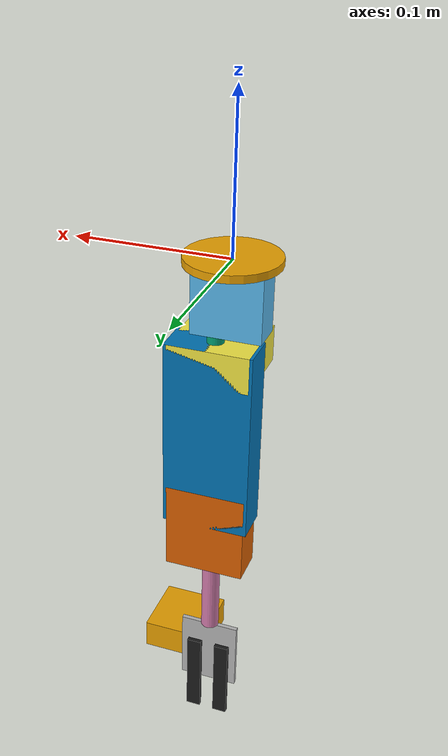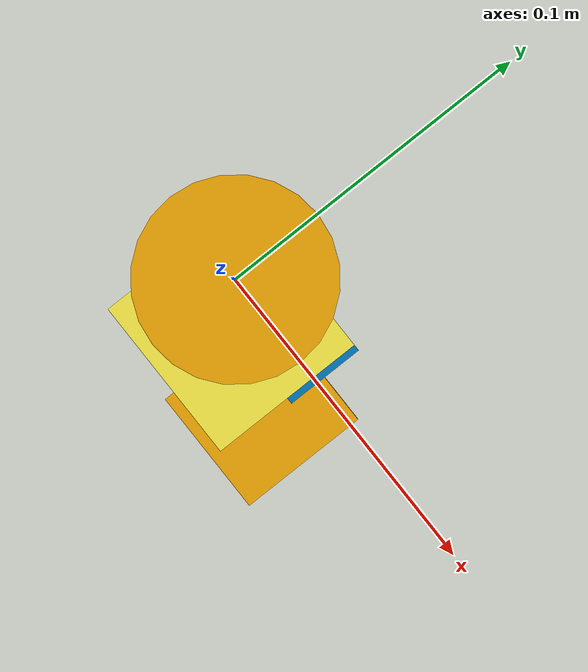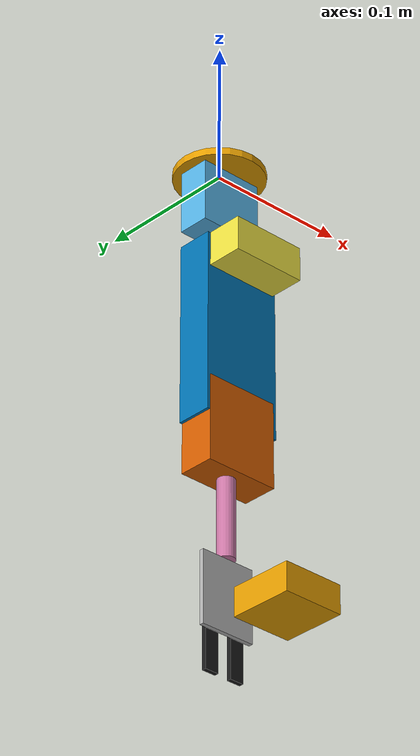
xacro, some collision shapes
<?xml version="1.0"?>
<robot xmlns:xacro="http://www.ros.org/wiki/xacro" name="manipulator">

    <xacro:include filename="$(find manipulator_description)/urdf/manipulator_gazebo.xacro"/>
    <xacro:include filename="$(find manipulator_description)/urdf/manipulator_ros2_control.xacro"/>

    <!-- Links -->
    <!-- NOTE: world link and base_plate_fixed joint removed for aerial manipulator integration -->
    <!-- The base_plate will be connected to hexacopter::base_link via the world file -->

    <link name="base_plate">
        <inertial>
            <origin xyz="0 0 0" rpy="0 0 0"/>
            <mass value="0.050"/>  <!-- Example: 50g plate -->
            <inertia
                ixx="0.00001129"
                ixy="0.0"
                ixz="0.0"
                iyy="0.00001129"
                iyz="0.0"
                izz="0.00002250"/>
        </inertial>

        <visual>
            <origin xyz="0 0 0" rpy="0 0 0"/>
            <geometry>
                <cylinder radius="0.03" length="0.005"/>
            </geometry>
        </visual>

        <collision>
            <origin xyz="0 0 0" rpy="0 0 0"/>
            <geometry>
                <cylinder radius="0.03" length="0.005"/>
            </geometry>
        </collision>
    </link>

    <link name="arm_motor_1">
        <inertial>
            <origin xyz="0 0 0" rpy="0 0 0"/>
            <mass value="0.075"/>

            <inertia
                ixx="1.512500e-05" ixy="0" ixz="0"
                iyy="2.475625e-05" iyz="0"
                izz="1.568125e-05"/>
        </inertial>

        <visual>
            <origin xyz="0 0 0" rpy="0 0 0"/>
            <geometry>
                <!-- Motor approximated as 45×22×44 mm box -->
                <box size="0.045 0.022 0.044"/>
            </geometry>
        </visual>

        <collision>
            <origin xyz="0 0 0" rpy="0 0 0"/>
            <geometry>
                <box size="0.045 0.022 0.044"/>
            </geometry>
        </collision>
    </link>

    <joint name="joint_motor_1" type="fixed">
        <parent link="base_plate"/>
        <child link="arm_motor_1"/>

        <!-- Motor attached below the plate -->
        <origin xyz="0 0 -0.0245" rpy="0 0 0"/>
    </joint>

    <link name="razor_connector">
        <inertial>
            <origin xyz="0 0 0" rpy="0 0 0"/>
            <mass value="0.01"/>

            <inertia
                ixx="1.28958333e-07" ixy="0" ixz="0"
                iyy="1.28958333e-07" iyz="0"
                izz="1.51250000e-07"/>
        </inertial>

        <visual>
            <origin xyz="0 0 0" rpy="0 0 0"/>
            <geometry>
                <cylinder radius="0.0055" length="0.008"/>
            </geometry>
        </visual>

        <collision>
            <origin xyz="0 0 0" rpy="0 0 0"/>
            <geometry>
                <cylinder radius="0.0055" length="0.008"/>
            </geometry>
        </collision>
    </link>

    <joint name="joint_motor1_to_connector" type="fixed">
        <parent link="arm_motor_1"/>
        <child link="razor_connector"/>

        <!-- Connector sits ABOVE motor_1 -->
        <origin xyz="0.0095 0 -0.026" rpy="0 0 0"/>
    </joint>

    <link name="arm_motor_2">
        <inertial>
            <origin xyz="0 0 0" rpy="0 0 0"/>
            <mass value="0.082"/>

            <inertia
                ixx="2.10193333e-05" ixy="0" ixz="0"
                iyy="2.31308333e-05" iyz="0"
                izz="3.62781667e-05"/>
        </inertial>

        <visual>
            <origin xyz="0 0 0" rpy="0 0 0"/>
            <geometry>
                <!-- Motor approximated as 53×24×50 mm box -->
                <box size="0.053 0.050 0.024"/>
            </geometry>
        </visual>

        <collision>
            <origin xyz="0 0 0" rpy="0 0 0"/>
            <geometry>
                <box size="0.053 0.050 0.024"/>
            </geometry>
        </collision>
    </link>

    <joint name="joint_1" type="revolute">
        <parent link="razor_connector"/>
        <child link="arm_motor_2"/>

        <!-- Motor 2 sits ABOVE the connector -->
        <origin xyz="0 -0.010 -0.016" rpy="0 0 0"/>

        <!-- Rotation around Z-axis -->
        <axis xyz="0 0 1"/>

        <!-- Reasonable limits (modify as needed) -->
        <limit lower="-3.14" upper="3.14" effort="2.0" velocity="5.0"/>

        <!-- DART physics dynamics -->
        <dynamics damping="0.1" friction="0.1"/>
    </joint>

    <gazebo reference="joint_1">
        <initial_position>0.0</initial_position>
    </gazebo>

    <link name="h_arm">
        <inertial>
            <origin xyz="0 0 -0.052" rpy="0 0 0"/>
            <mass value="0.054"/>

            <inertia
                ixx="1.980045e-04" ixy="0" ixz="0"
                iyy="2.266425e-04" iyz="0"
                izz="3.426300e-05"/>
        </inertial>

        <visual>
            <origin xyz="0 0 -0.052" rpy="0 0 0"/>
            <geometry>
                <!-- 2 mm × 25 mm cross-section, height 128 mm -->
                <box size="0.057 0.025 0.128"/>
            </geometry>
        </visual>

        <collision>
            <origin xyz="0 0 -0.052" rpy="0 0 0"/>
            <geometry>
                <box size="0.057 0.025 0.128"/>
            </geometry>
        </collision>
    </link>

    <joint name="joint_2" type="revolute">
        <parent link="arm_motor_2"/>
        <child link="h_arm"/>

        <!-- Arm sits Below motor_2 -->
        <origin xyz="0 0.0125 0" rpy="0 0 0"/>

        <!-- Rotation around X-axis -->
        <axis xyz="1 0 0"/>

        <limit lower="-1.57" upper="1.57" effort="2.0" velocity="3.0"/>

        <!-- DART physics dynamics -->
        <dynamics damping="0.1" friction="0.1"/>
    </joint>

    <gazebo reference="joint_2">
        <initial_position>0.0</initial_position>
    </gazebo>

    <link name="arm_motor_3">
        <inertial>
            <origin xyz="0 0 -0.015" rpy="0 0 0"/>
            <mass value="0.085"/>

            <inertia
                ixx="4.90520833e-05" ixy="0" ixz="0"
                iyy="6.45220833e-05" iyz="0"
                izz="2.43241667e-05"/>
        </inertial>

        <visual>
            <origin xyz="0 0 -0.015" rpy="0 0 0"/>
            <geometry>
                <!-- 53 × 25 × 60 mm -->
                <box size="0.053 0.025 0.060"/>
            </geometry>
        </visual>

        <collision>
            <origin xyz="0 0 -0.015" rpy="0 0 0"/>
            <geometry>
                <box size="0.053 0.025 0.060"/>
            </geometry>
        </collision>
    </link>

    <joint name="joint_3" type="revolute">
        <parent link="h_arm"/>
        <child link="arm_motor_3"/>

        <origin xyz="0 0 -0.106" rpy="0 0 0"/>
        <!-- Rotation around X-axis -->
        <axis xyz="1 0 0"/>
        <limit lower="-1.57" upper="1.57" effort="2.0" velocity="3.0"/>

        <!-- DART physics dynamics -->
        <dynamics damping="0.1" friction="0.1"/>
    </joint>

    <gazebo reference="joint_3">
        <initial_position>0.0</initial_position>
    </gazebo>

    <link name="rod">
        <inertial>
            <origin xyz="0 0 0" rpy="0 0 0"/>
            <mass value="0.02"/>

            <inertia
                ixx="5.22166667e-06" ixy="0" ixz="0"
                iyy="5.22166667e-06" iyz="0"
                izz="3.60000000e-07"/>
        </inertial>

        <visual>
            <origin xyz="0 0 0" rpy="0 0 0"/>
            <geometry>
                <!-- r = 6 mm, h = 55 mm -->
                <cylinder radius="0.006" length="0.055"/>
            </geometry>
        </visual>

        <collision>
            <origin xyz="0 0 0" rpy="0 0 0"/>
            <geometry>
                <cylinder radius="0.006" length="0.055"/>
            </geometry>
        </collision>
    </link>

    <!-- Rod fixedly connected to Motor 3 -->
    <joint name="joint_motor3_to_rod" type="fixed">
        <parent link="arm_motor_3"/>
        <child  link="rod"/>

        <!-- Rod center 0.0575 m above motor_3 center:
            0.5*0.060 (motor height) + 0.5*0.055 (rod length) -->
        <origin xyz="-0.0015 0 -0.0725" rpy="0 0 0"/>
    </joint>

    <link name="gripper_base">
        <inertial>
            <origin xyz="0 0 0" rpy="0 0 0"/>
            <mass value="0.020"/>

            <inertia
                ixx="4.18166667e-06" ixy="0" ixz="0"
                iyy="6.83333333e-06" iyz="0"
                izz="2.68166667e-06"/>
        </inertial>

        <visual>
            <origin xyz="0 0 0" rpy="0 0 0"/>
            <geometry>
                <!-- 40 × 3 × 50 mm plate -->
                <box size="0.040 0.003 0.050"/>
            </geometry>
        </visual>

        <collision>
            <origin xyz="0 0 0" rpy="0 0 0"/>
            <geometry>
                <box size="0.040 0.003 0.050"/>
            </geometry>
        </collision>
    </link>

    <joint name="joint_rod_to_gripper_base" type="fixed">
        <parent link="rod"/>
        <child  link="gripper_base"/>

        <!-- Gripper base mounted at the top end of the rod -->
        <origin xyz="0 0 -0.0525" rpy="0 0 0"/>
    </joint>

    <link name="arm_motor_4">
        <inertial>
            <origin xyz="0 0 0" rpy="0 0 0"/>
            <mass value="0.055"/>

            <inertia
                ixx="1.11145833e-05" ixy="0" ixz="0"
                iyy="1.07066667e-05" iyz="0"
                izz="1.81545833e-05"/>
        </inertial>

        <visual>
            <origin xyz="0 0 0" rpy="0 0 0"/>
            <geometry>
                <!-- 44 × 20 × 45 mm block -->
                <box size="0.044 0.045 0.020"/>
            </geometry>
        </visual>

        <collision>
            <origin xyz="0 0 0" rpy="0 0 0"/>
            <geometry>
                <box size="0.044 0.045 0.020"/>
            </geometry>
        </collision>
    </link>

    <joint name="joint_gripperbase_to_motor4" type="fixed">
        <parent link="gripper_base"/>
        <child  link="arm_motor_4"/>

        <!-- Motor 4 mounted on top of the gripper base -->
        <origin xyz="0.027 -0.024 -0.002" rpy="0 0 0"/>
    </joint>

    <link name="gripper_L">
        <inertial>
            <origin xyz="0 0 -0.022" rpy="0 0 0"/>
            <mass value="0.020"/>

            <inertia
                ixx="1.56950000e-05" ixy="0" ixz="0"
                iyy="1.58466667e-05" iyz="0"
                izz="1.81666667e-07"/>
        </inertial>

        <visual>
            <origin xyz="-0.009 -0.002 -0.075" rpy="-${PI / 2} -${PI / 2} 0"/>
            <geometry>
                <mesh filename="package://manipulator_description/meshes/left_finger.STL" scale="0.0015 0.0015 0.0015"/>
            </geometry>
            <material name="black">
                <color rgba="0.1 0.1 0.1 1.0"/>
            </material>
        </visual>

        <collision>
            <origin xyz="0 0 -0.022" rpy="0 0 0"/>
            <geometry>
                <box size="0.010 0.003 0.060"/>
            </geometry>
        </collision>
    </link>

    <joint name="joint_4" type="revolute">
        <parent link="gripper_base"/>
        <child  link="gripper_L"/>

        <!-- Gripper hinge location (adjust if needed) -->
        <origin xyz="-0.010 0.003 0" rpy="0 0 0"/>

        <!-- Rotation about Y-axis -->
        <axis xyz="0 1 0"/>

        <limit lower="-0.001" upper="1.2" effort="1.0" velocity="2.0"/>

        <!-- DART physics dynamics -->
        <dynamics damping="0.05" friction="0.05"/>
    </joint>

    <gazebo reference="joint_4">
        <initial_position>0.01</initial_position>
    </gazebo>

    <link name="gripper_R">
        <inertial>
            <origin xyz="0 0 -0.022" rpy="0 0 0"/>
            <mass value="0.020"/>

            <inertia
                ixx="1.56950000e-05" ixy="0" ixz="0"
                iyy="1.58466667e-05" iyz="0"
                izz="1.81666667e-07"/>
        </inertial>

        <visual>
            <origin xyz="-0.011 -0.002 -0.075" rpy="-${PI / 2} -${PI / 2} 0"/>
            <geometry>
                <mesh filename="package://manipulator_description/meshes/right_finger.STL" scale="0.0015 0.0015 0.0015"/>
            </geometry>
            <material name="black">
                <color rgba="0.1 0.1 0.1 1.0"/>
            </material>
        </visual>

        <collision>
            <origin xyz="0 0 -0.022" rpy="0 0 0"/>
            <geometry>
                <box size="0.010 0.003 0.060"/>
            </geometry>
        </collision>
    </link>

    <joint name="joint_5" type="revolute">
        <parent link="gripper_base"/>
        <child  link="gripper_R"/>

        <!-- Gripper hinge location (adjust if needed) -->
        <origin xyz="0.010 0.003 0" rpy="0 0 0"/>

        <!-- Rotation about Y-axis -->
        <axis xyz="0 1 0"/>

        <limit lower="-1.2" upper="0.001" effort="1.0" velocity="2.0"/>
        <mimic joint="joint_4" multiplier="-1"/>

        <!-- DART physics dynamics -->
        <dynamics damping="0.05" friction="0.05"/>
    </joint>

    <gazebo reference="joint_5">
        <initial_position>-0.01</initial_position>
    </gazebo>

</robot>

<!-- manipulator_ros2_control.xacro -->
<robot xmlns:xacro="http://www.ros.org/wiki/xacro" name="manipulator">

    <xacro:property name="PI" value="3.14159265359" />

    <ros2_control type="system" name="RobotSystem">

        <hardware>
            <plugin>gz_ros2_control/GazeboSimSystem</plugin>
        </hardware>

        <!-- joint_1 (razor_connector -> motor_2) : URDF limits [-3.14, 3.14] -->
        <joint name="joint_1">
            <command_interface name="position">
                <param name="min">-3.14159265359</param>
                <param name="max">3.14159265359</param>
            </command_interface>
            <state_interface name="position"/>
        </joint>

        <!-- joint_2 (motor_2 -> h_arm_L) : URDF limits [-1.57, 1.57] -->
        <joint name="joint_2">
            <command_interface name="position">
                <param name="min">-1.57079632679</param>
                <param name="max">1.57079632679</param>
            </command_interface>
            <state_interface name="position"/>
        </joint>

        <!-- joint_3 (h_arm -> motor_3) : URDF limits [-1.57, 1.57] -->
        <joint name="joint_3">
            <command_interface name="position">
                <param name="min">-1.57079632679</param>
                <param name="max">1.57079632679</param>
            </command_interface>
            <state_interface name="position"/>
        </joint>

        <!-- joint_4 (gripper_L) : URDF limits [0, 1.2] -->
        <joint name="joint_4">
            <command_interface name="position">
                <param name="min">0.0</param>
                <param name="max">1.2</param>
            </command_interface>
            <state_interface name="position"/>
        </joint>

        <!-- joint_5 mimics joint_4 with multiplier=-1 in the URDF -->
        <!-- Note: gz_ros2_control does not expose mimic joints as controllable interfaces -->
        <joint name="joint_5">
            <param name="mimic">joint_4</param>
            <param name="multiplier">-1</param>
        </joint>

    </ros2_control>

</robot>
